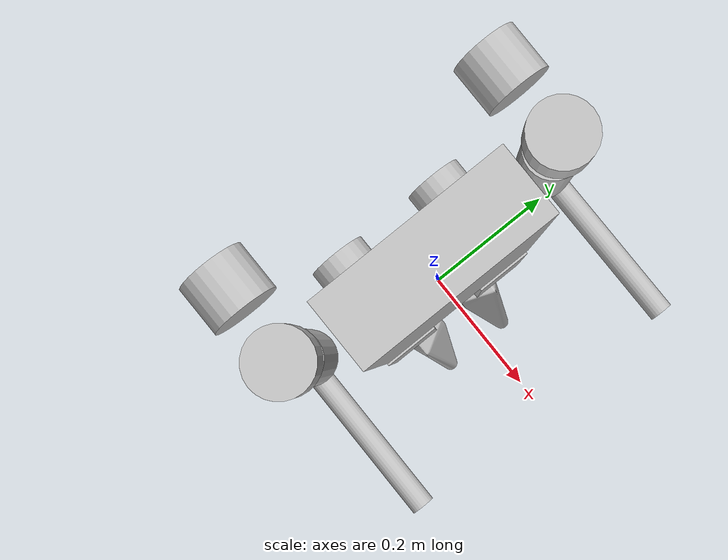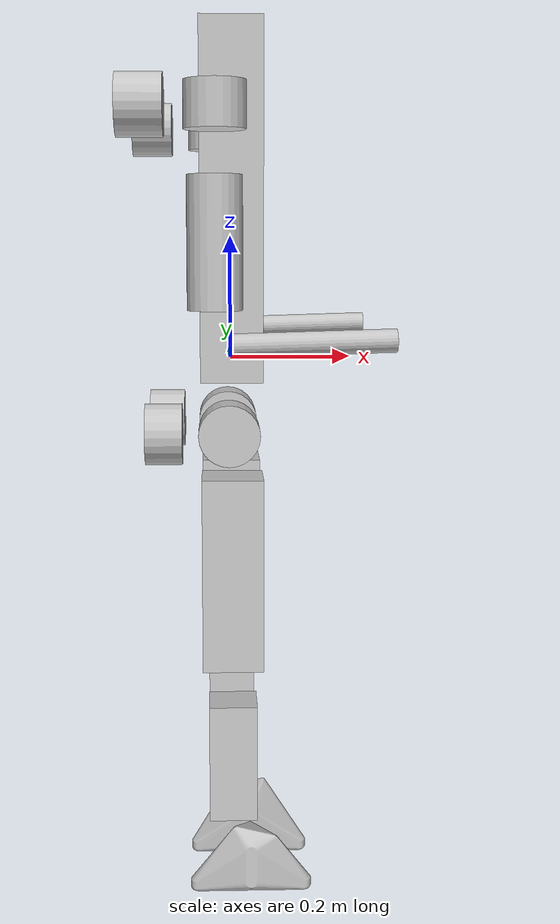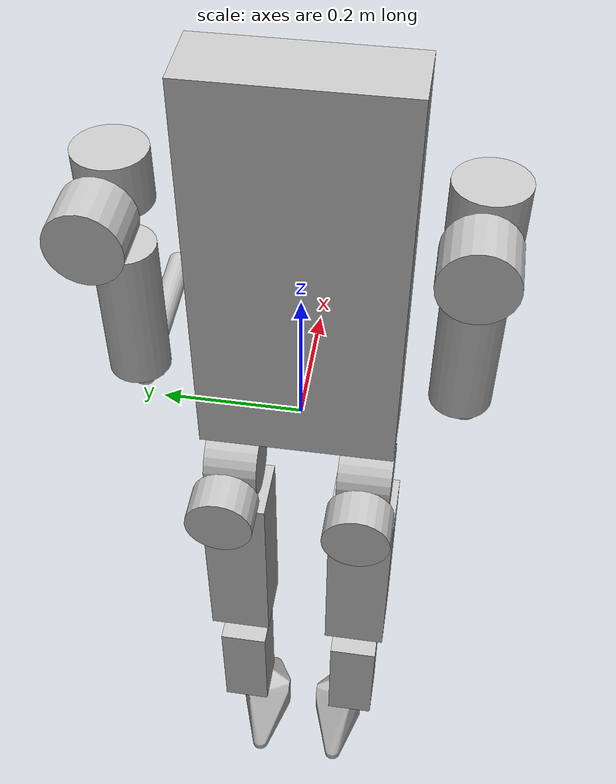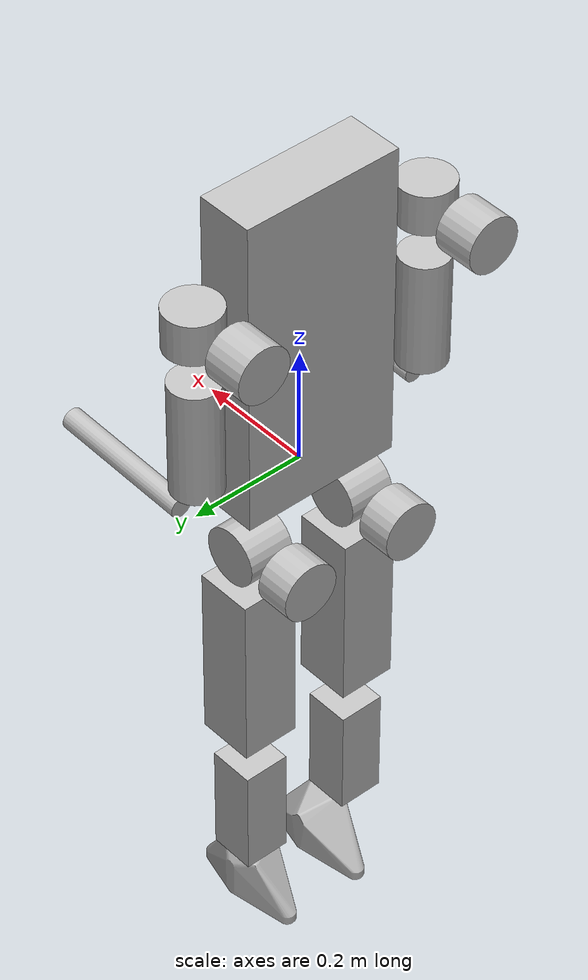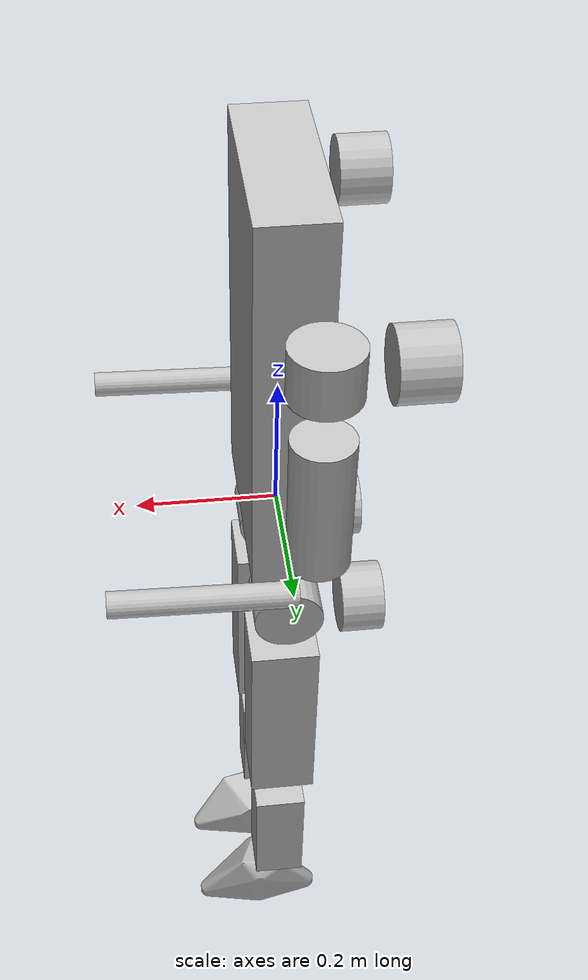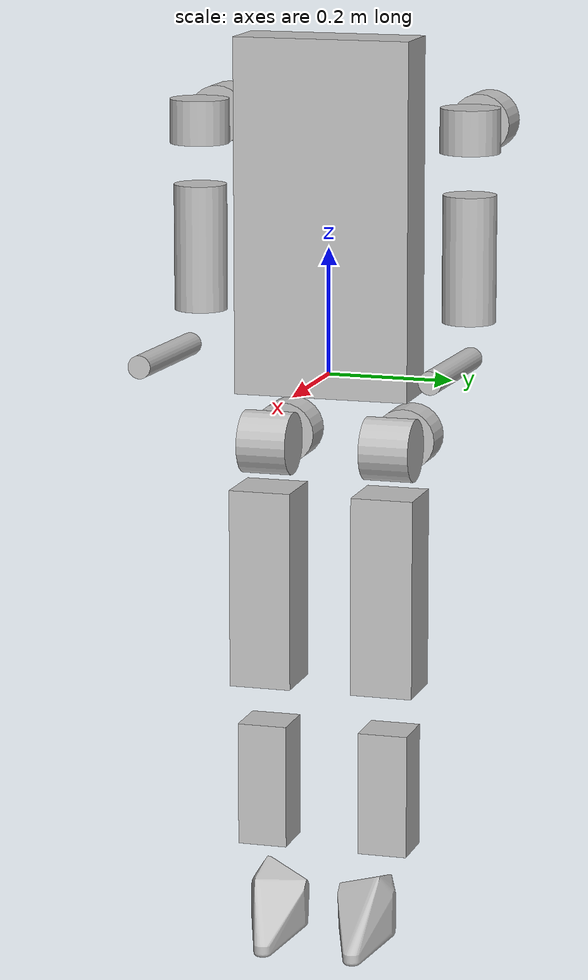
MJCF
<mujoco model="bhr8_fc2">
  <compiler angle="radian" meshdir="meshes/"/>

  <asset>
    <mesh name="rfoot" file="rfoot.stl"/>
    <mesh name="lfoot" file="lfoot.stl"/>
  </asset>

  <worldbody>
    <geom size="0.05 0.14 0.28" pos="0 0 0.25" type="box" rgba="0.752941 0.752941 0.752941 1"/>
    <geom size="0.047 0.035" pos="-0.13625 -0.21476 0.389" quat="0.707388 0 0.706825 0" type="cylinder" rgba="0.752941 0.752941 0.752941 1"/>
    <geom size="0.047 0.035" pos="-0.02525 -0.219 0.389" type="cylinder" rgba="0.752941 0.752941 0.752941 1"/>
    <geom size="0.042 0.1" pos="-0.02625 -0.219 0.189" type="cylinder" rgba="0.752941 0.752941 0.752941 1"/>
    <geom size="0.018 0.125" pos="0.123686 -0.229 0.0401399" quat="0.696707 0 -0.717356 0" type="cylinder" rgba="0.752941 0.752941 0.752941 1"/>
    <geom size="0.047 0.035" pos="-0.13625 0.21476 0.389" quat="0.707388 0 0.706825 0" type="cylinder" rgba="0.752941 0.752941 0.752941 1"/>
    <geom size="0.047 0.035" pos="-0.02525 0.219 0.389" type="cylinder" rgba="0.752941 0.752941 0.752941 1"/>
    <geom size="0.042 0.1" pos="-0.02625 0.219 0.189" type="cylinder" rgba="0.752941 0.752941 0.752941 1"/>
    <geom size="0.018 0.125" pos="0.123686 0.229 0.0401399" quat="0.696707 0 -0.717356 0" type="cylinder" rgba="0.752941 0.752941 0.752941 1"/>
    <body name="rhip1" pos="0 -0.1 0.02324">
      <inertial pos="-0.078509 0 -0.118031" quat="0.312936 0.634303 0.633788 0.313119" mass="2.58958" diaginertia="0.011987 0.0111943 0.00318774"/>
      <joint name="rhipYaw" pos="0 0 0" axis="0 0 1" range="-3.14 3.14" actuatorfrcrange="-100 100"/>
      <geom size="0.05 0.03" pos="-0.11 0 -0.14" quat="0.707388 0 0.706825 0" type="cylinder" rgba="0.752941 0.752941 0.752941 1"/>
      <body name="rhip2" pos="-0.054 0 -0.13924">
        <inertial pos="0.051206 -0.00273 -0.000288" quat="-0.0508471 0.718896 0.0506336 0.691404" mass="2.70709" diaginertia="0.0040419 0.00361648 0.00344663"/>
        <joint name="rhipRoll" pos="0 0 0" axis="1 0 0" range="-3.14 3.14" actuatorfrcrange="-100 100"/>
        <geom size="0.05 0.04" pos="0.05 0 0" quat="0.707388 0.706825 0 0" type="cylinder" rgba="0.752941 0.752941 0.752941 1"/>
        <body name="rthigh" pos="0.055 -0.0001 0">
          <inertial pos="0.005701 -0.002335 -0.170006" quat="0.999478 -0.00792791 -0.00348956 0.0311153" mass="3.59646" diaginertia="0.0430693 0.0409464 0.00582637"/>
          <joint name="rhipPitch" pos="0 0 0" axis="0 1 0" range="-3.14 3.14" actuatorfrcrange="-100 100"/>
          <geom size="0.05 0.05 0.16" pos="0 0 -0.23" type="box" rgba="0.752941 0.752941 0.752941 1"/>
          <body name="rcalf" pos="0 0 -0.375">
            <inertial pos="0.003761 0 -0.143175" quat="0.99988 -0.000702889 -0.0153326 0.00193635" mass="2.51427" diaginertia="0.0176306 0.017018 0.00210037"/>
            <joint name="rknee" pos="0 0 0" axis="0 1 0" range="-3.14 3.14" actuatorfrcrange="-100 100"/>
            <geom size="0.04 0.04 0.1" pos="0 0 -0.18" type="box" rgba="0.752941 0.752941 0.752941 1"/>
            <body name="rankle" pos="0 0 -0.35">
              <inertial pos="-0.025377 0.000124 0.003585" quat="0.513827 0.48578 0.48578 0.513827" mass="0.139581" diaginertia="0.000117 0.000111225 3.97754e-05"/>
              <joint name="rankle1" pos="0 0 0" axis="0 1 0" range="-3.14 3.14" actuatorfrcrange="-100 100"/>
              <body name="rfoot" pos="0.031 0 0">
                <inertial pos="-0.016884 0.000166 -0.054343" quat="-0.00139322 0.658253 -0.0050555 0.752779" mass="1.50445" diaginertia="0.00652476 0.00619614 0.0011981"/>
                <joint name="rankle2" pos="0 0 0" axis="1 0 0" range="-3.14 3.14" actuatorfrcrange="-100 100"/>
                <geom type="mesh" rgba="0.752941 0.752941 0.752941 1" mesh="rfoot"/>
              </body>
            </body>
          </body>
        </body>
      </body>
    </body>
    <body name="lhip1" pos="0 0.1 0.02324">
      <inertial pos="-0.078509 0 -0.118031" quat="0.312936 0.634303 0.633788 0.313119" mass="2.58958" diaginertia="0.011987 0.0111943 0.00318774"/>
      <joint name="lhipYaw" pos="0 0 0" axis="0 0 1" range="-3.14 3.14" actuatorfrcrange="-100 100"/>
      <geom size="0.05 0.03" pos="-0.11 0 -0.14" quat="0.707388 0 0.706825 0" type="cylinder" rgba="0.752941 0.752941 0.752941 1"/>
      <body name="lhip2" pos="-0.054 0 -0.13924">
        <inertial pos="0.051206 0.002733 -0.00028" quat="0.0501181 0.718914 -0.051553 0.691371" mass="2.70722" diaginertia="0.00404191 0.00361648 0.00344661"/>
        <joint name="lhipRoll" pos="0 0 0" axis="1 0 0" range="-3.14 3.14" actuatorfrcrange="-100 100"/>
        <geom size="0.05 0.04" pos="0.05 0 0" quat="0.707388 0.706825 0 0" type="cylinder" rgba="0.752941 0.752941 0.752941 1"/>
        <body name="lthigh" pos="0.055 0 0">
          <inertial pos="0.004804 0.002343 -0.169952" quat="0.99957 0.00788906 -0.00488581 -0.0278185" mass="3.59646" diaginertia="0.0430607 0.0408405 0.00572671"/>
          <joint name="lhipPitch" pos="0 0 0" axis="0 1 0" range="-3.14 3.14" actuatorfrcrange="-100 100"/>
          <geom size="0.05 0.05 0.16" pos="0 0 -0.23" type="box" rgba="0.752941 0.752941 0.752941 1"/>
          <body name="lcalf" pos="0 0 -0.375">
            <inertial pos="0.003757 -0.00029 -0.143175" quat="0.999882 0.000728441 -0.0153344 0.000562778" mass="2.51427" diaginertia="0.0176306 0.017019 0.00210036"/>
            <joint name="lknee" pos="0 0 0" axis="0 1 0" range="-3.14 3.14" actuatorfrcrange="-100 100"/>
            <geom size="0.04 0.04 0.1" pos="0 0 -0.18" type="box" rgba="0.752941 0.752941 0.752941 1"/>
            <body name="lankle" pos="0 0 -0.35">
              <inertial pos="-0.025377 0.000124 0.003585" quat="0.513827 0.48578 0.48578 0.513827" mass="0.139581" diaginertia="0.000117 0.000111225 3.97754e-05"/>
              <joint name="lankle1" pos="0 0 0" axis="0 1 0" range="-3.14 3.14" actuatorfrcrange="-100 100"/>
              <body name="lfoot" pos="0.031 0 0">
                <inertial pos="-0.016876 -0.000173 -0.054342" quat="0.0024359 0.658246 0.00581857 0.752776" mass="1.50435" diaginertia="0.00652477 0.00619511 0.00119811"/>
                <joint name="lankle2" pos="0 0 0" axis="1 0 0" range="-3.14 3.14" actuatorfrcrange="-100 100"/>
                <geom type="mesh" rgba="0.752941 0.752941 0.752941 1" mesh="lfoot"/>
              </body>
            </body>
          </body>
        </body>
      </body>
    </body>
  </worldbody>
</mujoco>
